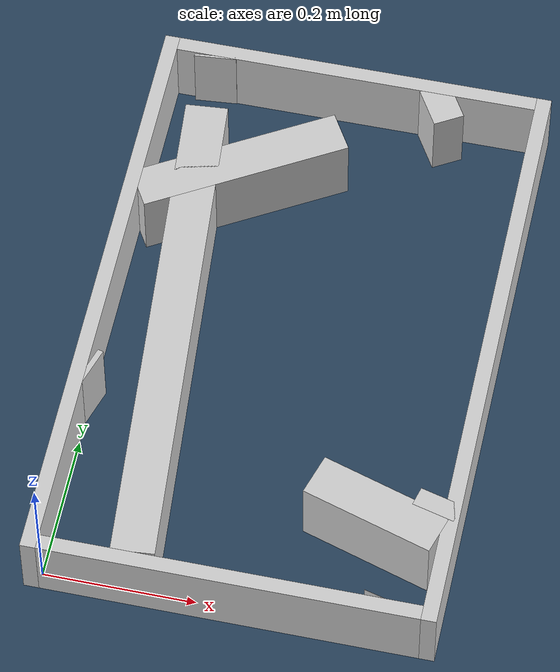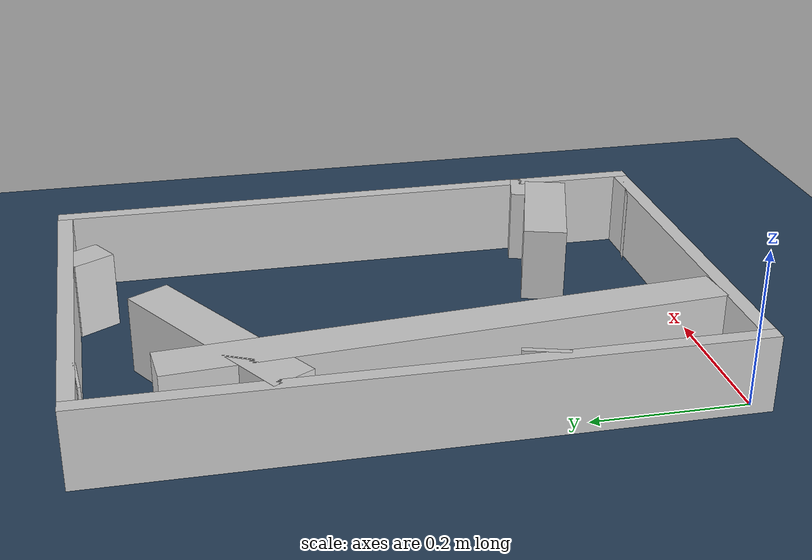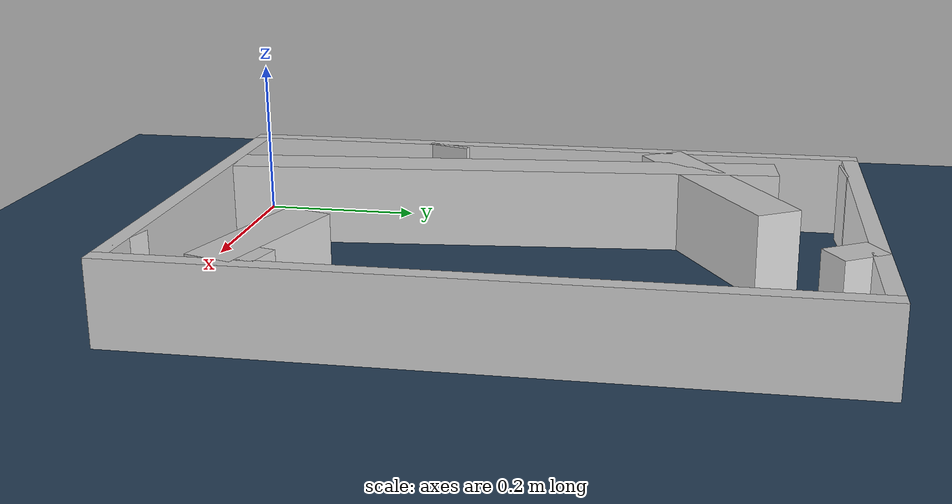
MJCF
<?xml version="1.0" ?>
<mujoco model="generated_real_template">
  <compiler angle="degree"/>
  <option timestep="0.002" integrator="implicitfast" iterations="100" cone="elliptic"/>
  <default>
    <geom density="1"/>
  </default>
  <asset>
    <texture builtin="gradient" height="3072" rgb1="0.3 0.5 0.7" rgb2="0 0 0" type="skybox" width="512"/>
    <texture builtin="checker" height="300" mark="edge" markrgb="0.8 0.8 0.8" name="groundplane" rgb1="0.2 0.3 0.4" rgb2="0.1 0.2 0.3" type="2d" width="300"/>
    <material name="groundplane" reflectance="0.2" texrepeat="5 5" texture="groundplane" texuniform="true"/>
  </asset>
  <worldbody>
    <light dir="0 0 -1" directional="true" pos="0 0 1.5"/>
    <geom name="floor" type="plane" condim="4" friction="0.5 0.005 0.001" material="groundplane" size="0 0 0.05"/>
    <body name="walls">
      <geom name="wall_boundary_left" type="box" condim="4" friction="1.0 0.005 0.0001" rgba="0.8 0.8 0.8 1" pos="-0.010000 0.387500 0.050000" euler="0 0 0.000000" size="0.010000 0.407500 0.050000"/>
      <geom name="wall_boundary_right" type="box" condim="4" friction="1.0 0.005 0.0001" rgba="0.8 0.8 0.8 1" pos="0.500000 0.387500 0.050000" euler="0 0 0.000000" size="0.010000 0.407500 0.050000"/>
      <geom name="wall_boundary_bottom" type="box" condim="4" friction="1.0 0.005 0.0001" rgba="0.8 0.8 0.8 1" pos="0.245000 -0.010000 0.050000" euler="0 0 0.000000" size="0.245000 0.010000 0.050000"/>
      <geom name="wall_boundary_top" type="box" condim="4" friction="1.0 0.005 0.0001" rgba="0.8 0.8 0.8 1" pos="0.245000 0.785000 0.050000" euler="0 0 0.000000" size="0.245000 0.010000 0.050000"/>
      <geom name="wall_inner_1_1" type="box" condim="4" friction="1.0 0.005 0.0001" rgba="0.8 0.8 0.8 1" pos="0.366781 0.759740 0.050000" euler="0 0 -149.262651" size="0.021058 0.028500 0.050000"/>
      <geom name="wall_inner_1_2" type="box" condim="4" friction="1.0 0.005 0.0001" rgba="0.8 0.8 0.8 1" pos="0.122417 0.614431 0.050000" euler="0 0 -149.262651" size="0.142425 0.028500 0.050000"/>
      <geom name="wall_inner_2_1" type="box" condim="4" friction="1.0 0.005 0.0001" rgba="0.8 0.8 0.8 1" pos="0.404251 0.131588 0.050000" euler="0 0 162.840574" size="0.089744 0.028500 0.050000"/>
      <geom name="wall_inner_2_2" type="box" condim="4" friction="1.0 0.005 0.0001" rgba="0.8 0.8 0.8 1" pos="0.003618 0.255294 0.050000" euler="0 0 162.840574" size="0.003787 0.028500 0.050000"/>
      <geom name="wall_inner_3_1" type="box" condim="4" friction="1.0 0.005 0.0001" rgba="0.8 0.8 0.8 1" pos="0.479154 0.146057 0.050000" euler="0 0 -104.550130" size="0.012973 0.028500 0.050000"/>
      <geom name="wall_inner_3_2" type="box" condim="4" friction="1.0 0.005 0.0001" rgba="0.8 0.8 0.8 1" pos="0.441261 0.000062 0.050000" euler="0 0 -104.550130" size="0.000064 0.028500 0.050000"/>
      <geom name="wall_inner_4_1" type="box" condim="4" friction="1.0 0.005 0.0001" rgba="0.8 0.8 0.8 1" pos="0.090260 0.344978 0.050000" euler="0 0 94.909831" size="0.346249 0.028500 0.050000"/>
      <geom name="wall_inner_4_2" type="box" condim="4" friction="1.0 0.005 0.0001" rgba="0.8 0.8 0.8 1" pos="0.053460 0.773364 0.050000" euler="0 0 94.909831" size="0.001642 0.028500 0.050000"/>
    </body>
  </worldbody>
</mujoco>
